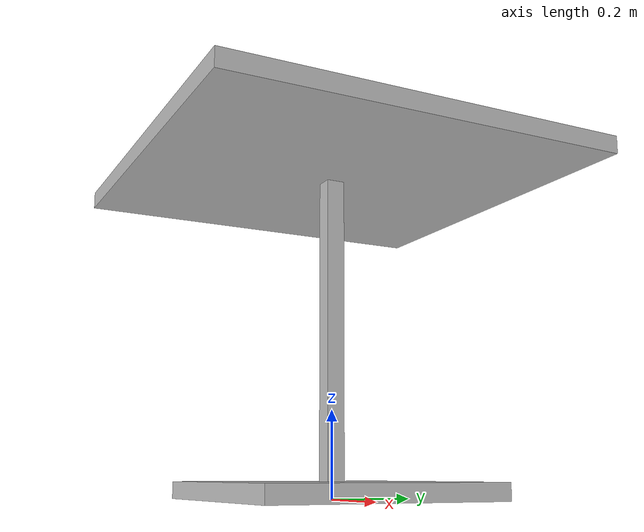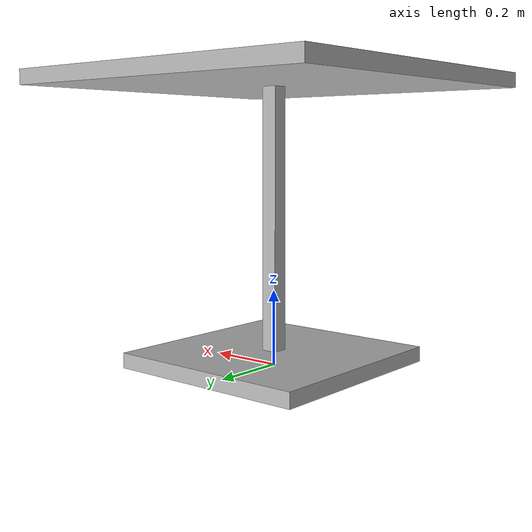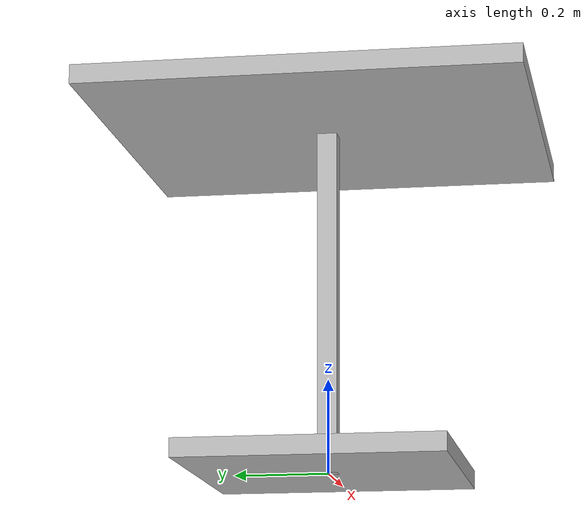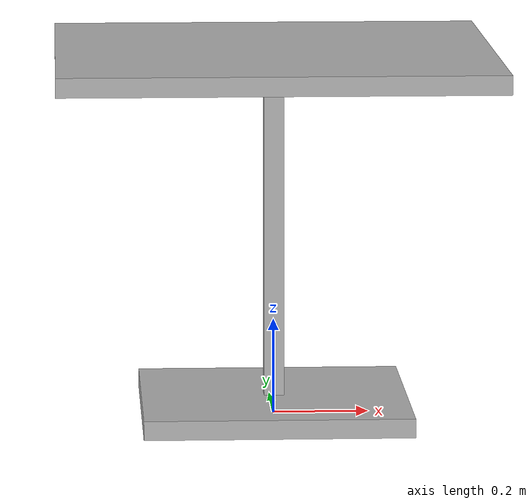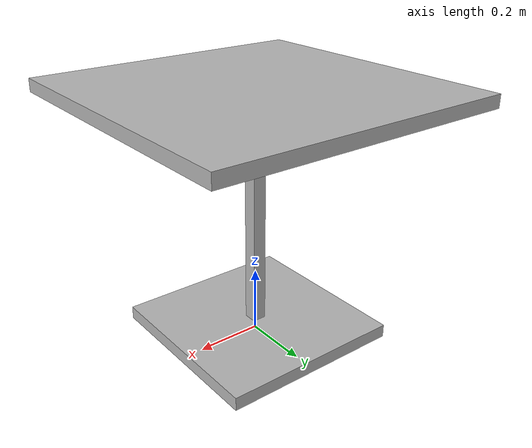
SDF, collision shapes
<?xml version="1.0" ?>
<sdf version="1.5">
  <model name="office_cafe_table">
    <static>true</static>
    <link name="link">
      <collision name="surface">
        <pose>0 0 0.755 0 0 0</pose>
        <geometry>
          <box>
            <size>0.913 0.913 0.04</size>
          </box>
        </geometry>
      </collision>

      <collision name="column">
        <pose>0 0 0.37 0 0 0</pose>
        <geometry>
          <box>
            <size>0.042 0.042 0.74</size>
          </box>
        </geometry>
      </collision>

      <collision name="base">
        <pose>0 0 0.02 0 0 0</pose>
        <geometry>
          <box>
            <size>0.56 0.56 0.04</size>
          </box>
        </geometry>
      </collision>

      <visual name="visual">
        <geometry>
          <mesh>
            <uri>model://office_cafe_table/meshes/office_cafe_table.dae</uri>
          </mesh>
        </geometry>
        <plugin filename="gz-sim-label-system" name="gz::sim::systems::Label">
          <label>3</label>
        </plugin>
      </visual>
    </link>
  </model>
</sdf>
